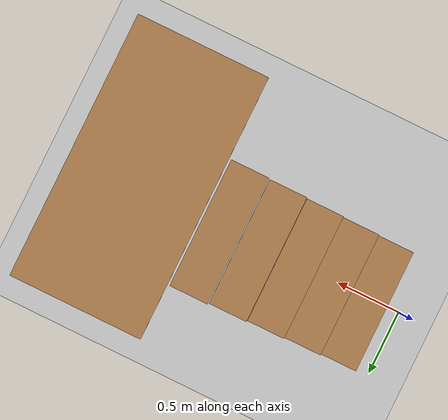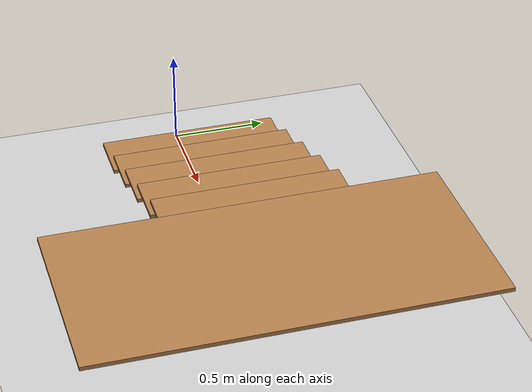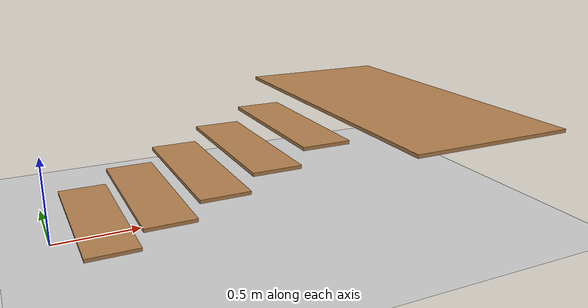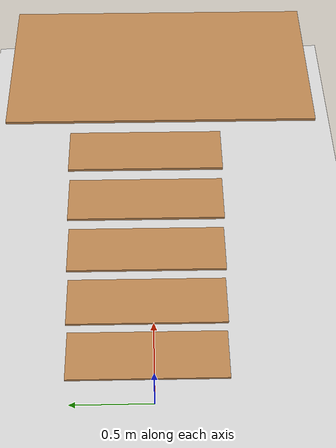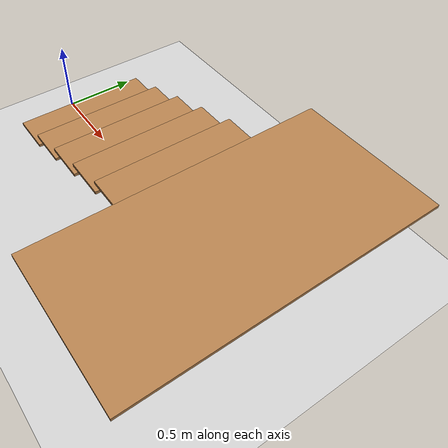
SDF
<?xml version="1.0" ?>
<sdf version="1.4">
  <world name="default">
    <physics type="ode">
      <gravity>0 0 -9.81</gravity>
      <ode>
        <solver>
          <type>quick</type>
          <iters>50</iters>
          <sor>1.4</sor>
        </solver>
        <constraints>
          <cfm>0.0</cfm>
          <erp>0.2</erp>
          <contact_max_correcting_vel>100.0</contact_max_correcting_vel>
          <contact_surface_layer>0.0</contact_surface_layer>
        </constraints>
      </ode>
      <real_time_update_rate>1000</real_time_update_rate>
      <max_step_size>0.001</max_step_size>
    </physics>
    <!-- A global light source -->
    <include>
      <uri>model://sun</uri>
    </include>
    <!-- A ground plane -->
    <include>
      <uri>model://ground_plane</uri>
    </include>

    <include>
      <pose>0.1 0 0 0 0 0</pose>
      <uri>model://bauzil_stairs</uri>
    </include>
  </world>
</sdf>

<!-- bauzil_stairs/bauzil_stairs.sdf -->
<sdf version='1.3'>
  <model name='bauzil_stairs'>
    <static>1</static>
    <link name='step_1'>
      <static>true</static>
      <collision name="step_1">
      	<pose>2.00999999046 -0.0599956810474 0.589999964237 0.0 -0.0 0.0</pose>
        <geometry>
          <box>
            <size>0.982111455754 1.96422285297 0.02</size>
          </box>
        </geometry>
      </collision>
      <visual name="step_1">
      	<pose>2.00999999046 -0.0599956810474 0.589999964237 0.0 -0.0 0.0</pose>
        <geometry>
          <box>
            <size>0.982111455754 1.96422285297 0.02</size>
          </box>
        </geometry>
        <material>
          <script>
            <uri>file://media/materials/scripts/gazebo.material</uri>
            <name>Gazebo/Wood</name>
          </script>
        </material>
      </visual>
    </link>
    <link name='step_2'>
      <static>true</static>
      <collision name="step_2">
      	<pose>1.36000001431 0.0400044322014 0.489999970198 0.0 -0.0 0.0</pose>
        <geometry>
          <box>
            <size>0.28850603857 0.961686948088 0.02</size>
          </box>
        </geometry>
      </collision>
      <visual name="step_2">
      	<pose>1.36000001431 0.0400044322014 0.489999970198 0.0 -0.0 0.0</pose>
        <geometry>
          <box>
            <size>0.28850603857 0.961686948088 0.02</size>
          </box>
        </geometry>
        <material>
          <script>
            <uri>file://media/materials/scripts/gazebo.material</uri>
            <name>Gazebo/Wood</name>
          </script>
        </material>
      </visual>
    </link>
    <link name='step_3'>
      <static>true</static>
      <collision name="step_3">
      	<pose>1.06000000238 0.0400044322014 0.389999976158 0.0 -0.0 0.0</pose>
        <geometry>
          <box>
            <size>0.288506153589 0.961686949345 0.02</size>
          </box>
        </geometry>
      </collision>
      <visual name="step_3">
      	<pose>1.06000000238 0.0400044322014 0.389999976158 0.0 -0.0 0.0</pose>
        <geometry>
          <box>
            <size>0.288506153589 0.961686949345 0.02</size>
          </box>
        </geometry>
        <material>
          <script>
            <uri>file://media/materials/scripts/gazebo.material</uri>
            <name>Gazebo/Wood</name>
          </script>
        </material>
      </visual>
    </link>
    <link name='step_4'>
      <static>true</static>
      <collision name="step_4">
      	<pose>0.76000007987 0.0400044322014 0.289999982119 0.0 -0.0 0.0</pose>
        <geometry>
          <box>
            <size>0.288506153589 0.961686949345 0.02</size>
          </box>
        </geometry>
      </collision>
      <visual name="step_4">
      	<pose>0.76000007987 0.0400044322014 0.289999982119 0.0 -0.0 0.0</pose>
        <geometry>
          <box>
            <size>0.288506153589 0.961686949345 0.02</size>
          </box>
        </geometry>
        <material>
          <script>
            <uri>file://media/materials/scripts/gazebo.material</uri>
            <name>Gazebo/Wood</name>
          </script>
        </material>
      </visual>
    </link>
    <link name='step_5'>
      <static>true</static>
      <collision name="step_5">
      	<pose>0.460000008345 0.0400044322014 0.189999988079 0.0 -0.0 0.0</pose>
        <geometry>
          <box>
            <size>0.288506153589 0.961686949345 0.02</size>
          </box>
        </geometry>
      </collision>
      <visual name="step_5">
      	<pose>0.460000008345 0.0400044322014 0.189999988079 0.0 -0.0 0.0</pose>
        <geometry>
          <box>
            <size>0.288506153589 0.961686949345 0.02</size>
          </box>
        </geometry>
        <material>
          <script>
            <uri>file://media/materials/scripts/gazebo.material</uri>
            <name>Gazebo/Wood</name>
          </script>
        </material>
      </visual>
    </link>
    <link name='step_6'>
      <static>true</static>
      <collision name="step_6">
      	<pose>0.160000003874 0.0400044322014 0.0899999791384 0.0 -0.0 0.0</pose>
        <geometry>
          <box>
            <size>0.288506153589 0.961686949345 0.02</size>
          </box>
        </geometry>
      </collision>
      <visual name="step_6">
      	<pose>0.160000003874 0.0400044322014 0.0899999791384 0.0 -0.0 0.0</pose>
        <geometry>
          <box>
            <size>0.288506153589 0.961686949345 0.02</size>
          </box>
        </geometry>
        <material>
          <script>
            <uri>file://media/materials/scripts/gazebo.material</uri>
            <name>Gazebo/Wood</name>
          </script>
        </material>
      </visual>
    </link>
  </model>
</sdf>
